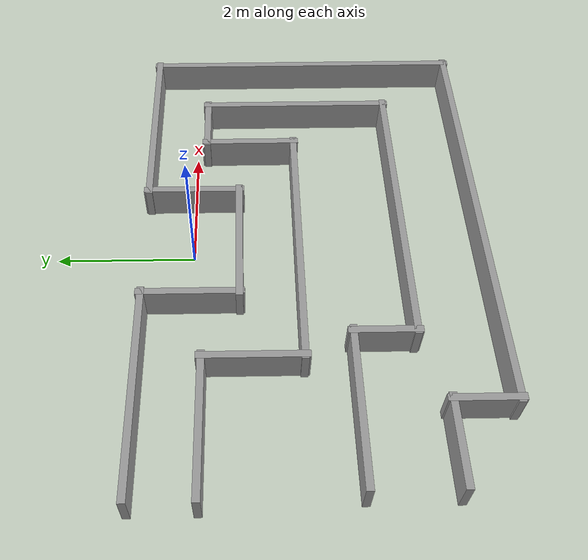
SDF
<?xml version='1.0'?>
<sdf version='1.6'>
  <model name='maze_simple'>
    <pose frame=''>0.031972 -1.74058 0 0 -0 0</pose>
    <link name='Wall_43'>
      <collision name='Wall_43_Collision'>
        <geometry>
          <box>
            <size>3 0.1 0.5</size>
          </box>
        </geometry>
        <pose frame=''>0 0 0.25 0 -0 0</pose>
      </collision>
      <visual name='Wall_43_Visual'>
        <pose frame=''>0 0 0.25 0 -0 0</pose>
        <geometry>
          <box>
            <size>3 0.1 0.5</size>
          </box>
        </geometry>
        <material>
          <script>
            <uri>file://media/materials/scripts/gazebo.material</uri>
            <name>Gazebo/Grey</name>
          </script>
          <ambient>1 1 1 1</ambient>
        </material>
        <meta>
          <layer>0</layer>
        </meta>
      </visual>
      <pose frame=''>-2.35 2.425 0 0 -0 0</pose>
    </link>
    <link name='Wall_44'>
      <collision name='Wall_44_Collision'>
        <geometry>
          <box>
            <size>1.5 0.1 0.5</size>
          </box>
        </geometry>
        <pose frame=''>0 0 0.25 0 -0 0</pose>
      </collision>
      <visual name='Wall_44_Visual'>
        <pose frame=''>0 0 0.25 0 -0 0</pose>
        <geometry>
          <box>
            <size>1.5 0.1 0.5</size>
          </box>
        </geometry>
        <material>
          <script>
            <uri>file://media/materials/scripts/gazebo.material</uri>
            <name>Gazebo/Grey</name>
          </script>
          <ambient>1 1 1 1</ambient>
        </material>
        <meta>
          <layer>0</layer>
        </meta>
      </visual>
      <pose frame=''>-0.925 1.75 0 0 -0 -1.5708</pose>
    </link>
    <link name='Wall_45'>
      <collision name='Wall_45_Collision'>
        <geometry>
          <box>
            <size>2 0.1 0.5</size>
          </box>
        </geometry>
        <pose frame=''>0 0 0.25 0 -0 0</pose>
      </collision>
      <visual name='Wall_45_Visual'>
        <pose frame=''>0 0 0.25 0 -0 0</pose>
        <geometry>
          <box>
            <size>2 0.1 0.5</size>
          </box>
        </geometry>
        <material>
          <script>
            <uri>file://media/materials/scripts/gazebo.material</uri>
            <name>Gazebo/Grey</name>
          </script>
          <ambient>1 1 1 1</ambient>
        </material>
        <meta>
          <layer>0</layer>
        </meta>
      </visual>
      <pose frame=''>-0 1.075 0 0 -0 0</pose>
    </link>
    <link name='Wall_46'>
      <collision name='Wall_46_Collision'>
        <geometry>
          <box>
            <size>1.5 0.1 0.5</size>
          </box>
        </geometry>
        <pose frame=''>0 0 0.25 0 -0 0</pose>
      </collision>
      <visual name='Wall_46_Visual'>
        <pose frame=''>0 0 0.25 0 -0 0</pose>
        <geometry>
          <box>
            <size>1.5 0.1 0.5</size>
          </box>
        </geometry>
        <material>
          <script>
            <uri>file://media/materials/scripts/gazebo.material</uri>
            <name>Gazebo/Grey</name>
          </script>
          <ambient>1 1 1 1</ambient>
        </material>
        <meta>
          <layer>0</layer>
        </meta>
      </visual>
      <pose frame=''>0.925 1.75 0 0 -0 1.5708</pose>
    </link>
    <link name='Wall_47'>
      <collision name='Wall_47_Collision'>
        <geometry>
          <box>
            <size>3 0.1 0.5</size>
          </box>
        </geometry>
        <pose frame=''>0 0 0.25 0 -0 0</pose>
      </collision>
      <visual name='Wall_47_Visual'>
        <pose frame=''>0 0 0.25 0 -0 0</pose>
        <geometry>
          <box>
            <size>3 0.1 0.5</size>
          </box>
        </geometry>
        <material>
          <script>
            <uri>file://media/materials/scripts/gazebo.material</uri>
            <name>Gazebo/Grey</name>
          </script>
          <ambient>1 1 1 1</ambient>
        </material>
        <meta>
          <layer>0</layer>
        </meta>
      </visual>
      <pose frame=''>2.35 2.425 0 0 -0 0</pose>
    </link>
    <link name='Wall_48'>
      <collision name='Wall_48_Collision'>
        <geometry>
          <box>
            <size>5 0.1 0.5</size>
          </box>
        </geometry>
        <pose frame=''>0 0 0.25 0 -0 0</pose>
      </collision>
      <visual name='Wall_48_Visual'>
        <pose frame=''>0 0 0.25 0 -0 0</pose>
        <geometry>
          <box>
            <size>5 0.1 0.5</size>
          </box>
        </geometry>
        <material>
          <script>
            <uri>file://media/materials/scripts/gazebo.material</uri>
            <name>Gazebo/Grey</name>
          </script>
          <ambient>1 1 1 1</ambient>
        </material>
        <meta>
          <layer>0</layer>
        </meta>
      </visual>
      <pose frame=''>3.775 -0 0 0 -0 -1.5708</pose>
    </link>
    <link name='Wall_49'>
      <collision name='Wall_49_Collision'>
        <geometry>
          <box>
            <size>6.5 0.1 0.5</size>
          </box>
        </geometry>
        <pose frame=''>0 0 0.25 0 -0 0</pose>
      </collision>
      <visual name='Wall_49_Visual'>
        <pose frame=''>0 0 0.25 0 -0 0</pose>
        <geometry>
          <box>
            <size>6.5 0.1 0.5</size>
          </box>
        </geometry>
        <material>
          <script>
            <uri>file://media/materials/scripts/gazebo.material</uri>
            <name>Gazebo/Grey</name>
          </script>
          <ambient>1 1 1 1</ambient>
        </material>
        <meta>
          <layer>0</layer>
        </meta>
      </visual>
      <pose frame=''>0.6 -2.425 0 0 -0 3.14159</pose>
    </link>
    <link name='Wall_50'>
      <collision name='Wall_50_Collision'>
        <geometry>
          <box>
            <size>1 0.1 0.5</size>
          </box>
        </geometry>
        <pose frame=''>0 0 0.25 0 -0 0</pose>
      </collision>
      <visual name='Wall_50_Visual'>
        <pose frame=''>0 0 0.25 0 -0 0</pose>
        <geometry>
          <box>
            <size>1 0.1 0.5</size>
          </box>
        </geometry>
        <material>
          <script>
            <uri>file://media/materials/scripts/gazebo.material</uri>
            <name>Gazebo/Grey</name>
          </script>
          <ambient>1 1 1 1</ambient>
        </material>
        <meta>
          <layer>0</layer>
        </meta>
      </visual>
      <pose frame=''>-2.575 -2 0 0 -0 1.5708</pose>
    </link>
    <link name='Wall_51'>
      <collision name='Wall_51_Collision'>
        <geometry>
          <box>
            <size>1.25 0.1 0.5</size>
          </box>
        </geometry>
        <pose frame=''>0 0 0.25 0 -0 0</pose>
      </collision>
      <visual name='Wall_51_Visual'>
        <pose frame=''>0 0 0.25 0 -0 0</pose>
        <geometry>
          <box>
            <size>1.25 0.1 0.5</size>
          </box>
        </geometry>
        <material>
          <script>
            <uri>file://media/materials/scripts/gazebo.material</uri>
            <name>Gazebo/Grey</name>
          </script>
          <ambient>1 1 1 1</ambient>
        </material>
        <meta>
          <layer>0</layer>
        </meta>
      </visual>
      <pose frame=''>-3.125 -1.575 0 0 -0 3.14159</pose>
    </link>
    <link name='Wall_55'>
      <collision name='Wall_55_Collision'>
        <geometry>
          <box>
            <size>2 0.1 0.5</size>
          </box>
        </geometry>
        <pose frame=''>0 0 0.25 0 -0 0</pose>
      </collision>
      <visual name='Wall_55_Visual'>
        <pose frame=''>0 0 0.25 0 -0 0</pose>
        <geometry>
          <box>
            <size>2 0.1 0.5</size>
          </box>
        </geometry>
        <material>
          <script>
            <uri>file://media/materials/scripts/gazebo.material</uri>
            <name>Gazebo/Grey</name>
          </script>
          <ambient>1 1 1 1</ambient>
        </material>
        <meta>
          <layer>0</layer>
        </meta>
      </visual>
      <pose frame=''>-2.85 1.575 0 0 -0 0</pose>
    </link>
    <link name='Wall_56'>
      <collision name='Wall_56_Collision'>
        <geometry>
          <box>
            <size>1.5 0.1 0.5</size>
          </box>
        </geometry>
        <pose frame=''>0 0 0.25 0 -0 0</pose>
      </collision>
      <visual name='Wall_56_Visual'>
        <pose frame=''>0 0 0.25 0 -0 0</pose>
        <geometry>
          <box>
            <size>1.5 0.1 0.5</size>
          </box>
        </geometry>
        <material>
          <script>
            <uri>file://media/materials/scripts/gazebo.material</uri>
            <name>Gazebo/Grey</name>
          </script>
          <ambient>1 1 1 1</ambient>
        </material>
        <meta>
          <layer>0</layer>
        </meta>
      </visual>
      <pose frame=''>-1.925 0.9 0 0 -0 -1.5708</pose>
    </link>
    <link name='Wall_57'>
      <collision name='Wall_57_Collision'>
        <geometry>
          <box>
            <size>4 0.1 0.5</size>
          </box>
        </geometry>
        <pose frame=''>0 0 0.25 0 -0 0</pose>
      </collision>
      <visual name='Wall_57_Visual'>
        <pose frame=''>0 0 0.25 0 -0 0</pose>
        <geometry>
          <box>
            <size>4 0.1 0.5</size>
          </box>
        </geometry>
        <material>
          <script>
            <uri>file://media/materials/scripts/gazebo.material</uri>
            <name>Gazebo/Grey</name>
          </script>
          <ambient>1 1 1 1</ambient>
        </material>
        <meta>
          <layer>0</layer>
        </meta>
      </visual>
      <pose frame=''>-0 0.225 0 0 -0 0</pose>
    </link>
    <link name='Wall_58'>
      <collision name='Wall_58_Collision'>
        <geometry>
          <box>
            <size>1.5 0.1 0.5</size>
          </box>
        </geometry>
        <pose frame=''>0 0 0.25 0 -0 0</pose>
      </collision>
      <visual name='Wall_58_Visual'>
        <pose frame=''>0 0 0.25 0 -0 0</pose>
        <geometry>
          <box>
            <size>1.5 0.1 0.5</size>
          </box>
        </geometry>
        <material>
          <script>
            <uri>file://media/materials/scripts/gazebo.material</uri>
            <name>Gazebo/Grey</name>
          </script>
          <ambient>1 1 1 1</ambient>
        </material>
        <meta>
          <layer>0</layer>
        </meta>
      </visual>
      <pose frame=''>1.925 0.9 0 0 -0 1.5708</pose>
    </link>
    <link name='Wall_59'>
      <collision name='Wall_59_Collision'>
        <geometry>
          <box>
            <size>1 0.1 0.5</size>
          </box>
        </geometry>
        <pose frame=''>0 0 0.25 0 -0 0</pose>
      </collision>
      <visual name='Wall_59_Visual'>
        <pose frame=''>0 0 0.25 0 -0 0</pose>
        <geometry>
          <box>
            <size>1 0.1 0.5</size>
          </box>
        </geometry>
        <material>
          <script>
            <uri>file://media/materials/scripts/gazebo.material</uri>
            <name>Gazebo/Grey</name>
          </script>
          <ambient>1 1 1 1</ambient>
        </material>
        <meta>
          <layer>0</layer>
        </meta>
      </visual>
      <pose frame=''>2.35 1.575 0 0 -0 0</pose>
    </link>
    <link name='Wall_60'>
      <collision name='Wall_60_Collision'>
        <geometry>
          <box>
            <size>3 0.1 0.5</size>
          </box>
        </geometry>
        <pose frame=''>0 0 0.25 0 -0 0</pose>
      </collision>
      <visual name='Wall_60_Visual'>
        <pose frame=''>0 0 0.25 0 -0 0</pose>
        <geometry>
          <box>
            <size>3 0.1 0.5</size>
          </box>
        </geometry>
        <material>
          <script>
            <uri>file://media/materials/scripts/gazebo.material</uri>
            <name>Gazebo/Grey</name>
          </script>
          <ambient>1 1 1 1</ambient>
        </material>
        <meta>
          <layer>0</layer>
        </meta>
      </visual>
      <pose frame=''>2.775 0.15 0 0 -0 -1.5708</pose>
    </link>
    <link name='Wall_61'>
      <collision name='Wall_61_Collision'>
        <geometry>
          <box>
            <size>4.5 0.1 0.5</size>
          </box>
        </geometry>
        <pose frame=''>0 0 0.25 0 -0 0</pose>
      </collision>
      <visual name='Wall_61_Visual'>
        <pose frame=''>0 0 0.25 0 -0 0</pose>
        <geometry>
          <box>
            <size>4.5 0.1 0.5</size>
          </box>
        </geometry>
        <material>
          <script>
            <uri>file://media/materials/scripts/gazebo.material</uri>
            <name>Gazebo/Grey</name>
          </script>
          <ambient>1 1 1 1</ambient>
        </material>
        <meta>
          <layer>0</layer>
        </meta>
      </visual>
      <pose frame=''>0.6 -1.275 0 0 -0 3.14159</pose>
    </link>
    <link name='Wall_62'>
      <collision name='Wall_62_Collision'>
        <geometry>
          <box>
            <size>1 0.1 0.5</size>
          </box>
        </geometry>
        <pose frame=''>0 0 0.25 0 -0 0</pose>
      </collision>
      <visual name='Wall_62_Visual'>
        <pose frame=''>0 0 0.25 0 -0 0</pose>
        <geometry>
          <box>
            <size>1 0.1 0.5</size>
          </box>
        </geometry>
        <material>
          <script>
            <uri>file://media/materials/scripts/gazebo.material</uri>
            <name>Gazebo/Grey</name>
          </script>
          <ambient>1 1 1 1</ambient>
        </material>
        <meta>
          <layer>0</layer>
        </meta>
      </visual>
      <pose frame=''>-1.575 -0.85 0 0 -0 1.5708</pose>
    </link>
    <link name='Wall_63'>
      <collision name='Wall_63_Collision'>
        <geometry>
          <box>
            <size>2.25 0.1 0.5</size>
          </box>
        </geometry>
        <pose frame=''>0 0 0.25 0 -0 0</pose>
      </collision>
      <visual name='Wall_63_Visual'>
        <pose frame=''>0 0 0.25 0 -0 0</pose>
        <geometry>
          <box>
            <size>2.25 0.1 0.5</size>
          </box>
        </geometry>
        <material>
          <script>
            <uri>file://media/materials/scripts/gazebo.material</uri>
            <name>Gazebo/Grey</name>
          </script>
          <ambient>1 1 1 1</ambient>
        </material>
        <meta>
          <layer>0</layer>
        </meta>
      </visual>
      <pose frame=''>-2.625 -0.425 0 0 -0 3.14159</pose>
    </link>
    <static>1</static>
  </model>
</sdf>
